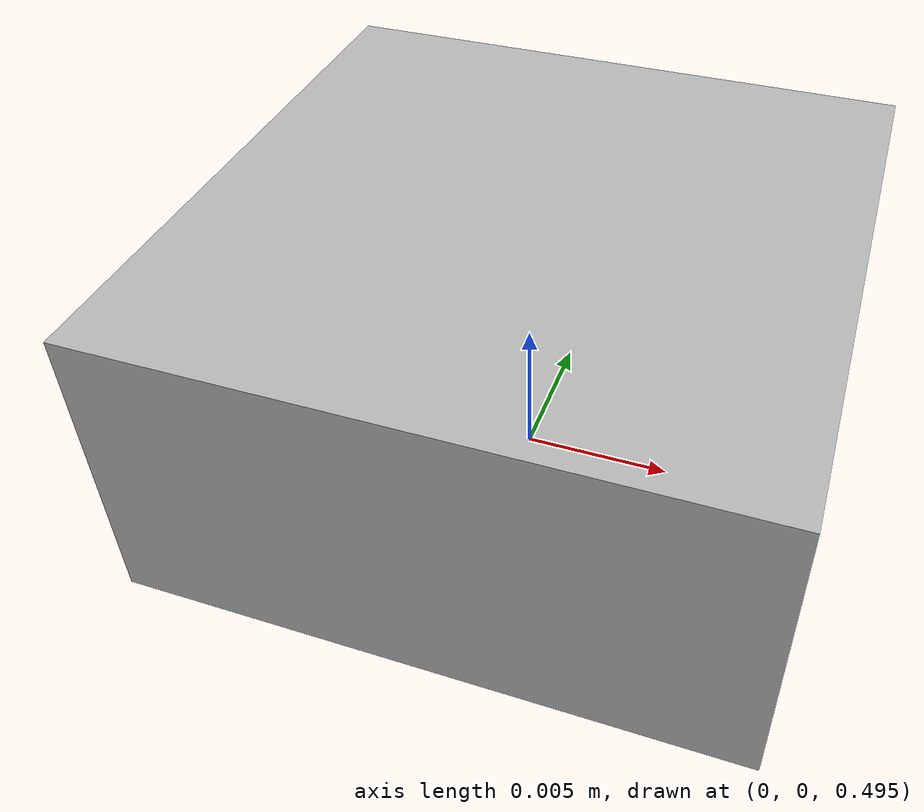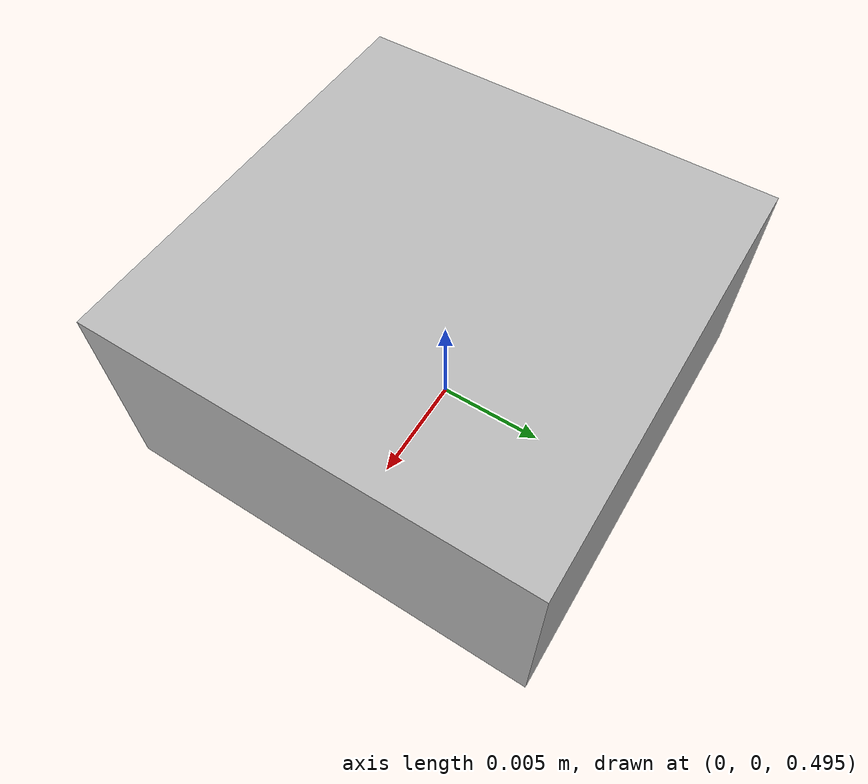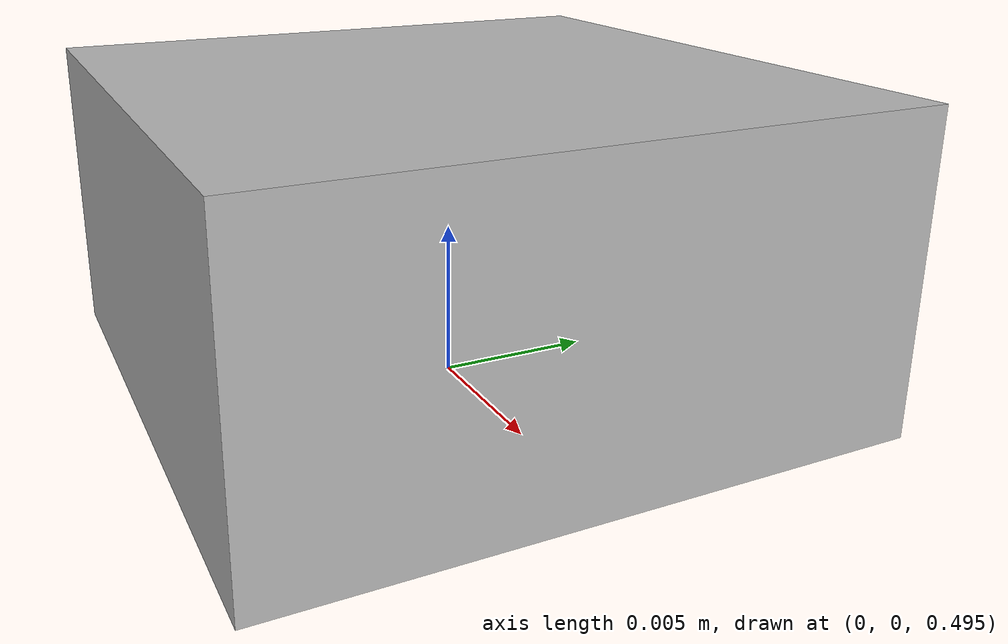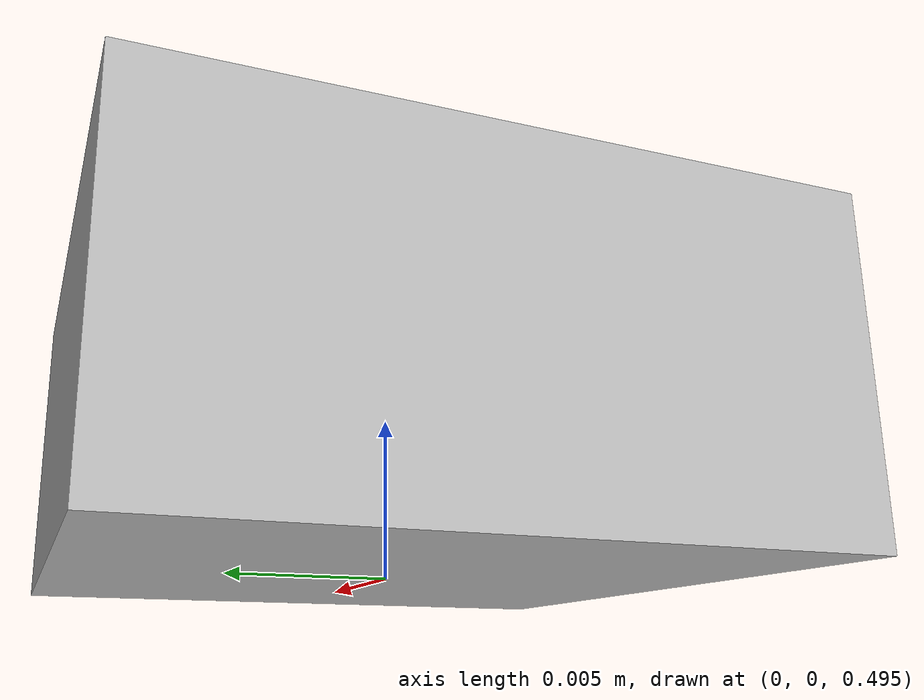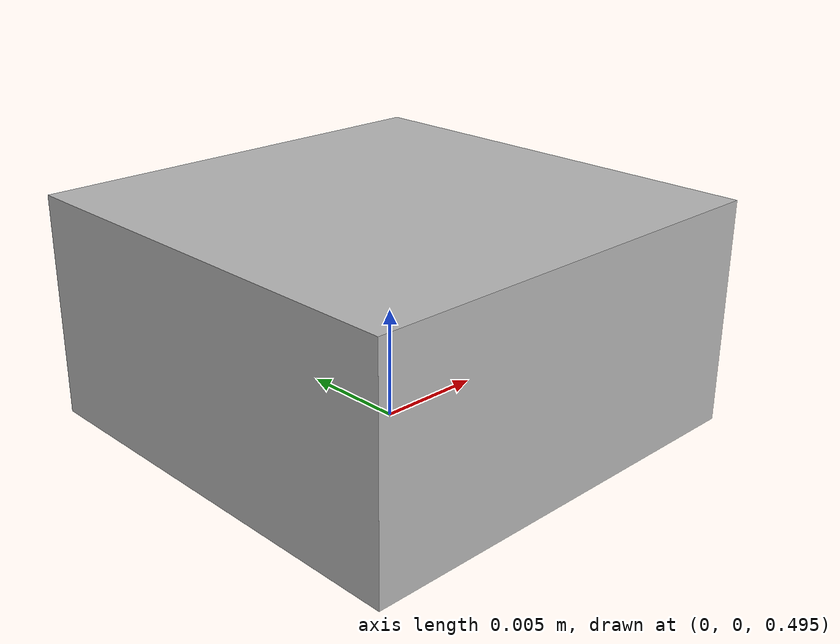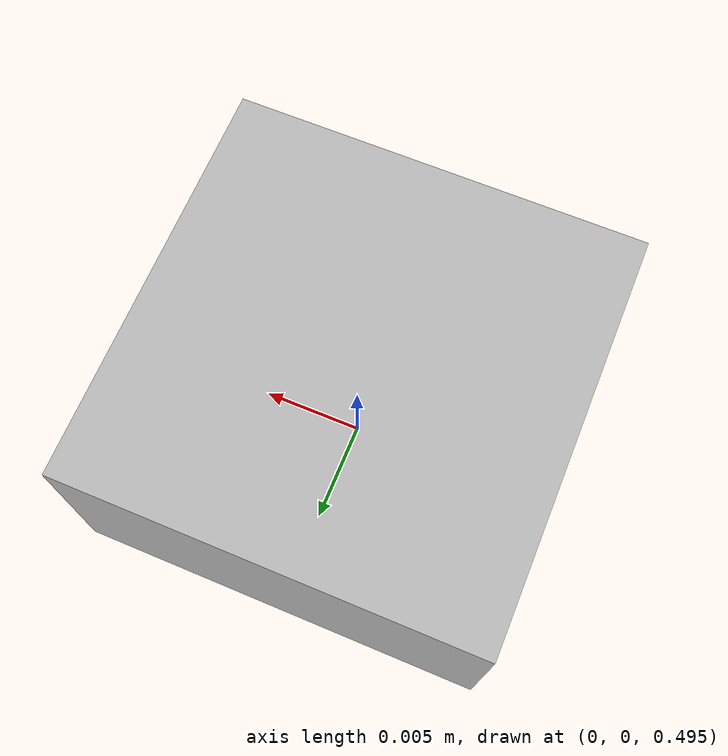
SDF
<?xml version="1.0" ?>
<sdf version="1.5">
  <model name="box2">
    <pose>0 0 0.5 0 0 0</pose>
    <link name="link">
      <inertial>
        <mass>0.0001</mass>
      </inertial>
      <collision name="collision">
        <geometry>
          <box>
            <size>0.02 0.02 0.01</size>
          </box>
        </geometry>
        <surface>
        <friction>
          <ode>
            <mu>0.5</mu>
            <mu2>0.1</mu2>
          </ode>
        </friction>
      </surface>
      </collision>
      <visual name="visual">
        <geometry>
          <box>
            <size>0.02 0.02 0.01</size>
          </box>
        </geometry>
      </visual>
    </link>
  </model>
</sdf>
